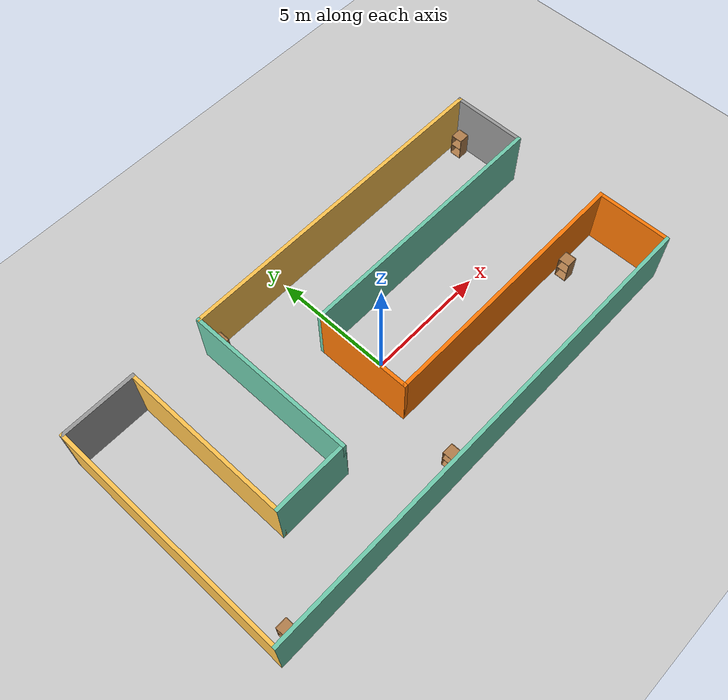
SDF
<sdf version="1.6">
 <world name="default">
  <light name="sun" type="directional">
   <pose>0 0 10 0 -0 0</pose>
   <diffuse>0.8 0.8 0.8 1</diffuse>
   <specular>0.2 0.2 0.2 1</specular>
   <attenuation>
    <range>1000</range>
    <constant>0.9</constant>
    <linear>0.01</linear>
    <quadratic>0.001</quadratic>
   </attenuation>
   <direction>-0.5 0.1 -0.9</direction>
  </light>
  <model name="ground_plane">
   <static>1</static>
   <link name="link">
    <collision name="collision">
     <geometry><plane><normal>0 0 1</normal><size>100 100</size></plane></geometry>
     <surface>
      <contact><collide_bitmask>65535</collide_bitmask></contact>
      <friction><ode><mu>100</mu><mu2>50</mu2></ode></friction>
     </surface>
    </collision>
    <visual name="visual">
     <cast_shadows>0</cast_shadows>
     <geometry><plane><normal>0 0 1</normal><size>100 100</size></plane></geometry>
     <material>
      <script><uri>file://media/materials/scripts/gazebo.material</uri><name>Gazebo/Grey</name></script>
     </material>
    </visual>
   </link>
  </model>
  <gravity>0 0 -9.8</gravity>
  <magnetic_field>6e-06 2.3e-05 -4.2e-05</magnetic_field>
  <atmosphere type="adiabatic"/>
  <physics name="default_physics" default="0" type="ode">
   <max_step_size>0.001</max_step_size>
   <real_time_factor>1</real_time_factor>
   <real_time_update_rate>1000</real_time_update_rate>
  </physics>
  <scene><ambient>0.4 0.4 0.4 1</ambient><background>0.7 0.7 0.7 1</background><shadows>1</shadows></scene>
  <spherical_coordinates>
   <surface_model>EARTH_WGS84</surface_model>
   <latitude_deg>0</latitude_deg>
   <longitude_deg>0</longitude_deg>
   <elevation>0</elevation>
   <heading_deg>0</heading_deg>
  </spherical_coordinates>
  <model name="simplebuilding">
   <link name="Wall_0">
    <collision name="Wall_0_Collision">
     <geometry><box><size>10.15 0.15 2.5</size></box></geometry>
     <pose>0 0 1.25 0 -0 0</pose>
    </collision>
    <visual name="Wall_0_Visual">
     <pose>0 0 1.25 0 -0 0</pose>
     <geometry><box><size>10.15 0.15 2.5</size></box></geometry>
     <material>
      <script><uri>file://media/materials/scripts/gazebo.material</uri><name>Gazebo/Grey</name></script>
      <ambient>1 0.764706 0.305882 1</ambient>
     </material>
     <meta><layer>0</layer></meta>
    </visual>
    <pose>-10 0 0 0 0 -1.5708</pose>
   </link>
   <link name="Wall_10">
    <collision name="Wall_10_Collision">
     <geometry><box><size>7.15 0.15 2.5</size></box></geometry>
     <pose>0 0 1.25 0 -0 0</pose>
    </collision>
    <visual name="Wall_10_Visual">
     <pose>0 0 1.25 0 -0 0</pose>
     <geometry><box><size>7.15 0.15 2.5</size></box></geometry>
     <material>
      <script><uri>file://media/materials/scripts/gazebo.material</uri><name>Gazebo/Grey</name></script>
      <ambient>0.435294 0.796078 0.67451 1</ambient>
     </material>
     <meta><layer>0</layer></meta>
    </visual>
    <pose>-4 1.5 0 0 -0 1.5708</pose>
   </link>
   <link name="Wall_12">
    <collision name="Wall_12_Collision">
     <geometry><box><size>14.15 0.15 2.5</size></box></geometry>
     <pose>0 0 1.25 0 -0 0</pose>
    </collision>
    <visual name="Wall_12_Visual">
     <pose>0 0 1.25 0 -0 0</pose>
     <geometry><box><size>14.15 0.15 2.5</size></box></geometry>
     <material>
      <script><uri>file://media/materials/scripts/gazebo.material</uri><name>Gazebo/Grey</name></script>
      <ambient>1 0.764706 0.305882 1</ambient>
     </material>
     <meta><layer>0</layer></meta>
    </visual>
    <pose>3 5 0 0 -0 0</pose>
   </link>
   <link name="Wall_13">
    <collision name="Wall_13_Collision">
     <geometry><box><size>3.15 0.15 2.5</size></box></geometry>
     <pose>0 0 1.25 0 -0 0</pose>
    </collision>
    <visual name="Wall_13_Visual">
     <pose>0 0 1.25 0 -0 0</pose>
     <geometry><box><size>3.15 0.15 2.5</size></box></geometry>
     <material>
      <script><uri>file://media/materials/scripts/gazebo.material</uri><name>Gazebo/Grey</name></script>
      <ambient>1 1 1 1</ambient>
     </material>
     <meta><layer>0</layer></meta>
    </visual>
    <pose>10 3.5 0 0 0 -1.5708</pose>
   </link>
   <link name="Wall_15">
    <collision name="Wall_15_Collision">
     <geometry><box><size>11.15 0.15 2.5</size></box></geometry>
     <pose>0 0 1.25 0 -0 0</pose>
    </collision>
    <visual name="Wall_15_Visual">
     <pose>0 0 1.25 0 -0 0</pose>
     <geometry><box><size>11.15 0.15 2.5</size></box></geometry>
     <material>
      <script><uri>file://media/materials/scripts/gazebo.material</uri><name>Gazebo/Grey</name></script>
      <ambient>0.435294 0.796078 0.67451 1</ambient>
     </material>
     <meta><layer>0</layer></meta>
    </visual>
    <pose>4.5 2 0 0 -0 3.14159</pose>
   </link>
   <link name="Wall_17">
    <collision name="Wall_17_Collision">
     <geometry><box><size>4.15 0.15 2.5</size></box></geometry>
     <pose>0 0 1.25 0 -0 0</pose>
    </collision>
    <visual name="Wall_17_Visual">
     <pose>0 0 1.25 0 -0 0</pose>
     <geometry><box><size>4.15 0.15 2.5</size></box></geometry>
     <material>
      <script><uri>file://media/materials/scripts/gazebo.material</uri><name>Gazebo/Grey</name></script>
      <ambient>0.996078 0.47451 0.0196078 1</ambient>
     </material>
     <meta><layer>0</layer></meta>
    </visual>
    <pose>-1 0 0 0 0 -1.5708</pose>
   </link>
   <link name="Wall_19">
    <collision name="Wall_19_Collision">
     <geometry><box><size>11.15 0.15 2.5</size></box></geometry>
     <pose>0 0 1.25 0 -0 0</pose>
    </collision>
    <visual name="Wall_19_Visual">
     <pose>0 0 1.25 0 -0 0</pose>
     <geometry><box><size>11.15 0.15 2.5</size></box></geometry>
     <material>
      <script><uri>file://media/materials/scripts/gazebo.material</uri><name>Gazebo/Grey</name></script>
      <ambient>0.996078 0.47451 0.0196078 1</ambient>
     </material>
     <meta><layer>0</layer></meta>
    </visual>
    <pose>4.5 -2 0 0 -0 0</pose>
   </link>
   <link name="Wall_2">
    <collision name="Wall_2_Collision">
     <geometry><box><size>20.15 0.15 2.5</size></box></geometry>
     <pose>0 0 1.25 0 -0 0</pose>
    </collision>
    <visual name="Wall_2_Visual">
     <pose>0 0 1.25 0 -0 0</pose>
     <geometry><box><size>20.15 0.15 2.5</size></box></geometry>
     <material>
      <script><uri>file://media/materials/scripts/gazebo.material</uri><name>Gazebo/Grey</name></script>
      <ambient>0.435294 0.796078 0.67451 1</ambient>
     </material>
     <meta><layer>0</layer></meta>
    </visual>
    <pose>0 -5 0 0 -0 0</pose>
   </link>
   <link name="Wall_21">
    <collision name="Wall_21_Collision">
     <geometry><box><size>3.15 0.15 2.5</size></box></geometry>
     <pose>0 0 1.25 0 -0 0</pose>
    </collision>
    <visual name="Wall_21_Visual">
     <pose>0 0 1.25 0 -0 0</pose>
     <geometry><box><size>3.15 0.15 2.5</size></box></geometry>
     <material>
      <script><uri>file://media/materials/scripts/gazebo.material</uri><name>Gazebo/Grey</name></script>
      <ambient>0.996078 0.47451 0.0196078 1</ambient>
     </material>
     <meta><layer>0</layer></meta>
    </visual>
    <pose>10 -3.5 0 0 0 -1.5708</pose>
   </link>
   <link name="Wall_4">
    <collision name="Wall_4_Collision">
     <geometry><box><size>3.15 0.15 2.5</size></box></geometry>
     <pose>0 0 1.25 0 -0 0</pose>
    </collision>
    <visual name="Wall_4_Visual">
     <pose>0 0 1.25 0 -0 0</pose>
     <geometry><box><size>3.15 0.15 2.5</size></box></geometry>
     <material>
      <script><uri>file://media/materials/scripts/gazebo.material</uri><name>Gazebo/Grey</name></script>
      <ambient>1 1 1 1</ambient>
     </material>
     <meta><layer>0</layer></meta>
    </visual>
    <pose>-8.5 5 0 0 -0 0</pose>
   </link>
   <link name="Wall_6">
    <collision name="Wall_6_Collision">
     <geometry><box><size>7.15 0.15 2.5</size></box></geometry>
     <pose>0 0 1.25 0 -0 0</pose>
    </collision>
    <visual name="Wall_6_Visual">
     <pose>0 0 1.25 0 -0 0</pose>
     <geometry><box><size>7.15 0.15 2.5</size></box></geometry>
     <material>
      <script><uri>file://media/materials/scripts/gazebo.material</uri><name>Gazebo/Grey</name></script>
      <ambient>1 0.764706 0.305882 1</ambient>
     </material>
     <meta><layer>0</layer></meta>
    </visual>
    <pose>-7 1.5 0 0 0 -1.5708</pose>
   </link>
   <link name="Wall_8">
    <collision name="Wall_8_Collision">
     <geometry><box><size>3.15 0.15 2.5</size></box></geometry>
     <pose>0 0 1.25 0 -0 0</pose>
    </collision>
    <visual name="Wall_8_Visual">
     <pose>0 0 1.25 0 -0 0</pose>
     <geometry><box><size>3.15 0.15 2.5</size></box></geometry>
     <material>
      <script><uri>file://media/materials/scripts/gazebo.material</uri><name>Gazebo/Grey</name></script>
      <ambient>0.435294 0.796078 0.67451 1</ambient>
     </material>
     <meta><layer>0</layer></meta>
    </visual>
    <pose>-5.5 -2 0 0 -0 0</pose>
   </link>
   <static>1</static>
  </model>
  <model name="cabinet">
   <static>1</static>
   <link name="cabinet_bottom_plate">
    <inertial>
     <pose>0 0 -1 0 -0 0</pose>
     <inertia><ixx>2.05</ixx><ixy>0</ixy><ixz>0</ixz><iyy>2.05</iyy><iyz>0</iyz><izz>2.05</izz></inertia>
     <mass>25</mass>
    </inertial>
    <collision name="cabinet_bottom_plate_geom">
     <pose>0 0 0.01 0 -0 0</pose>
     <geometry><box><size>0.45 0.45 0.02</size></box></geometry>
    </collision>
    <visual name="cabinet_bottom_plate_geom_visual">
     <pose>0 0 0.01 0 -0 0</pose>
     <geometry><box><size>0.45 0.45 0.02</size></box></geometry>
     <material>
      <script><uri>file://media/materials/scripts/gazebo.material</uri><name>Gazebo/Wood</name></script>
     </material>
    </visual>
    <collision name="cabinet_bottom_plate_geom_cabinet_back_plate">
     <pose>0.235 0 0.51 0 -0 0</pose>
     <geometry><box><size>0.02 0.45 1.02</size></box></geometry>
    </collision>
    <visual name="cabinet_bottom_plate_geom_cabinet_back_plate_visual">
     <pose>0.235 0 0.51 0 -0 0</pose>
     <geometry><box><size>0.02 0.45 1.02</size></box></geometry>
     <material>
      <script><uri>file://media/materials/scripts/gazebo.material</uri><name>Gazebo/Wood</name></script>
     </material>
    </visual>
    <collision name="cabinet_bottom_plate_geom_cabinet_left_plate">
     <pose>0 0.235 0.51 0 -0 0</pose>
     <geometry><box><size>0.45 0.02 1.02</size></box></geometry>
    </collision>
    <visual name="cabinet_bottom_plate_geom_cabinet_left_plate_visual">
     <pose>0 0.235 0.51 0 -0 0</pose>
     <geometry><box><size>0.45 0.02 1.02</size></box></geometry>
     <material>
      <script><uri>file://media/materials/scripts/gazebo.material</uri><name>Gazebo/Wood</name></script>
     </material>
    </visual>
    <collision name="cabinet_bottom_plate_geom_cabinet_middle_plate">
     <pose>0 0 0.51 0 -0 0</pose>
     <geometry><box><size>0.45 0.45 0.02</size></box></geometry>
    </collision>
    <visual name="cabinet_bottom_plate_geom_cabinet_middle_plate_visual">
     <pose>0 0 0.51 0 -0 0</pose>
     <geometry><box><size>0.45 0.45 0.02</size></box></geometry>
     <material>
      <script><uri>file://media/materials/scripts/gazebo.material</uri><name>Gazebo/Wood</name></script>
     </material>
    </visual>
    <collision name="cabinet_bottom_plate_geom_cabinet_right_plate">
     <pose>0 -0.235 0.51 0 -0 0</pose>
     <geometry><box><size>0.45 0.02 1.02</size></box></geometry>
    </collision>
    <visual name="cabinet_bottom_plate_geom_cabinet_right_plate_visual">
     <pose>0 -0.235 0.51 0 -0 0</pose>
     <geometry><box><size>0.45 0.02 1.02</size></box></geometry>
     <material>
      <script><uri>file://media/materials/scripts/gazebo.material</uri><name>Gazebo/Wood</name></script>
     </material>
    </visual>
    <collision name="cabinet_bottom_plate_geom_cabinet_top_plate">
     <pose>0 0 1.01 0 -0 0</pose>
     <geometry><box><size>0.45 0.45 0.02</size></box></geometry>
    </collision>
    <visual name="cabinet_bottom_plate_geom_cabinet_top_plate_visual">
     <pose>0 0 1.01 0 -0 0</pose>
     <geometry><box><size>0.45 0.45 0.02</size></box></geometry>
     <material>
      <script><uri>file://media/materials/scripts/gazebo.material</uri><name>Gazebo/Wood</name></script>
     </material>
    </visual>
   </link>
   <pose>-9.22504 -4.50417 0 0 -0 0</pose>
  </model>
  <model name="cabinet_0">
   <static>1</static>
   <link name="cabinet_bottom_plate">
    <inertial>
     <pose>0 0 -1 0 -0 0</pose>
     <inertia><ixx>2.05</ixx><ixy>0</ixy><ixz>0</ixz><iyy>2.05</iyy><iyz>0</iyz><izz>2.05</izz></inertia>
     <mass>25</mass>
    </inertial>
    <collision name="cabinet_bottom_plate_geom">
     <pose>0 0 0.01 0 -0 0</pose>
     <geometry><box><size>0.45 0.45 0.02</size></box></geometry>
    </collision>
    <visual name="cabinet_bottom_plate_geom_visual">
     <pose>0 0 0.01 0 -0 0</pose>
     <geometry><box><size>0.45 0.45 0.02</size></box></geometry>
     <material>
      <script><uri>file://media/materials/scripts/gazebo.material</uri><name>Gazebo/Wood</name></script>
     </material>
    </visual>
    <collision name="cabinet_bottom_plate_geom_cabinet_back_plate">
     <pose>0.235 0 0.51 0 -0 0</pose>
     <geometry><box><size>0.02 0.45 1.02</size></box></geometry>
    </collision>
    <visual name="cabinet_bottom_plate_geom_cabinet_back_plate_visual">
     <pose>0.235 0 0.51 0 -0 0</pose>
     <geometry><box><size>0.02 0.45 1.02</size></box></geometry>
     <material>
      <script><uri>file://media/materials/scripts/gazebo.material</uri><name>Gazebo/Wood</name></script>
     </material>
    </visual>
    <collision name="cabinet_bottom_plate_geom_cabinet_left_plate">
     <pose>0 0.235 0.51 0 -0 0</pose>
     <geometry><box><size>0.45 0.02 1.02</size></box></geometry>
    </collision>
    <visual name="cabinet_bottom_plate_geom_cabinet_left_plate_visual">
     <pose>0 0.235 0.51 0 -0 0</pose>
     <geometry><box><size>0.45 0.02 1.02</size></box></geometry>
     <material>
      <script><uri>file://media/materials/scripts/gazebo.material</uri><name>Gazebo/Wood</name></script>
     </material>
    </visual>
    <collision name="cabinet_bottom_plate_geom_cabinet_middle_plate">
     <pose>0 0 0.51 0 -0 0</pose>
     <geometry><box><size>0.45 0.45 0.02</size></box></geometry>
    </collision>
    <visual name="cabinet_bottom_plate_geom_cabinet_middle_plate_visual">
     <pose>0 0 0.51 0 -0 0</pose>
     <geometry><box><size>0.45 0.45 0.02</size></box></geometry>
     <material>
      <script><uri>file://media/materials/scripts/gazebo.material</uri><name>Gazebo/Wood</name></script>
     </material>
    </visual>
    <collision name="cabinet_bottom_plate_geom_cabinet_right_plate">
     <pose>0 -0.235 0.51 0 -0 0</pose>
     <geometry><box><size>0.45 0.02 1.02</size></box></geometry>
    </collision>
    <visual name="cabinet_bottom_plate_geom_cabinet_right_plate_visual">
     <pose>0 -0.235 0.51 0 -0 0</pose>
     <geometry><box><size>0.45 0.02 1.02</size></box></geometry>
     <material>
      <script><uri>file://media/materials/scripts/gazebo.material</uri><name>Gazebo/Wood</name></script>
     </material>
    </visual>
    <collision name="cabinet_bottom_plate_geom_cabinet_top_plate">
     <pose>0 0 1.01 0 -0 0</pose>
     <geometry><box><size>0.45 0.45 0.02</size></box></geometry>
    </collision>
    <visual name="cabinet_bottom_plate_geom_cabinet_top_plate_visual">
     <pose>0 0 1.01 0 -0 0</pose>
     <geometry><box><size>0.45 0.45 0.02</size></box></geometry>
     <material>
      <script><uri>file://media/materials/scripts/gazebo.material</uri><name>Gazebo/Wood</name></script>
     </material>
    </visual>
   </link>
   <pose>-3.62763 4.63881 0 0 -0 0</pose>
  </model>
  <model name="cabinet_1">
   <static>1</static>
   <link name="cabinet_bottom_plate">
    <inertial>
     <pose>0 0 -1 0 -0 0</pose>
     <inertia><ixx>2.05</ixx><ixy>0</ixy><ixz>0</ixz><iyy>2.05</iyy><iyz>0</iyz><izz>2.05</izz></inertia>
     <mass>25</mass>
    </inertial>
    <collision name="cabinet_bottom_plate_geom">
     <pose>0 0 0.01 0 -0 0</pose>
     <geometry><box><size>0.45 0.45 0.02</size></box></geometry>
    </collision>
    <visual name="cabinet_bottom_plate_geom_visual">
     <pose>0 0 0.01 0 -0 0</pose>
     <geometry><box><size>0.45 0.45 0.02</size></box></geometry>
     <material>
      <script><uri>file://media/materials/scripts/gazebo.material</uri><name>Gazebo/Wood</name></script>
     </material>
    </visual>
    <collision name="cabinet_bottom_plate_geom_cabinet_back_plate">
     <pose>0.235 0 0.51 0 -0 0</pose>
     <geometry><box><size>0.02 0.45 1.02</size></box></geometry>
    </collision>
    <visual name="cabinet_bottom_plate_geom_cabinet_back_plate_visual">
     <pose>0.235 0 0.51 0 -0 0</pose>
     <geometry><box><size>0.02 0.45 1.02</size></box></geometry>
     <material>
      <script><uri>file://media/materials/scripts/gazebo.material</uri><name>Gazebo/Wood</name></script>
     </material>
    </visual>
    <collision name="cabinet_bottom_plate_geom_cabinet_left_plate">
     <pose>0 0.235 0.51 0 -0 0</pose>
     <geometry><box><size>0.45 0.02 1.02</size></box></geometry>
    </collision>
    <visual name="cabinet_bottom_plate_geom_cabinet_left_plate_visual">
     <pose>0 0.235 0.51 0 -0 0</pose>
     <geometry><box><size>0.45 0.02 1.02</size></box></geometry>
     <material>
      <script><uri>file://media/materials/scripts/gazebo.material</uri><name>Gazebo/Wood</name></script>
     </material>
    </visual>
    <collision name="cabinet_bottom_plate_geom_cabinet_middle_plate">
     <pose>0 0 0.51 0 -0 0</pose>
     <geometry><box><size>0.45 0.45 0.02</size></box></geometry>
    </collision>
    <visual name="cabinet_bottom_plate_geom_cabinet_middle_plate_visual">
     <pose>0 0 0.51 0 -0 0</pose>
     <geometry><box><size>0.45 0.45 0.02</size></box></geometry>
     <material>
      <script><uri>file://media/materials/scripts/gazebo.material</uri><name>Gazebo/Wood</name></script>
     </material>
    </visual>
    <collision name="cabinet_bottom_plate_geom_cabinet_right_plate">
     <pose>0 -0.235 0.51 0 -0 0</pose>
     <geometry><box><size>0.45 0.02 1.02</size></box></geometry>
    </collision>
    <visual name="cabinet_bottom_plate_geom_cabinet_right_plate_visual">
     <pose>0 -0.235 0.51 0 -0 0</pose>
     <geometry><box><size>0.45 0.02 1.02</size></box></geometry>
     <material>
      <script><uri>file://media/materials/scripts/gazebo.material</uri><name>Gazebo/Wood</name></script>
     </material>
    </visual>
    <collision name="cabinet_bottom_plate_geom_cabinet_top_plate">
     <pose>0 0 1.01 0 -0 0</pose>
     <geometry><box><size>0.45 0.45 0.02</size></box></geometry>
    </collision>
    <visual name="cabinet_bottom_plate_geom_cabinet_top_plate_visual">
     <pose>0 0 1.01 0 -0 0</pose>
     <geometry><box><size>0.45 0.45 0.02</size></box></geometry>
     <material>
      <script><uri>file://media/materials/scripts/gazebo.material</uri><name>Gazebo/Wood</name></script>
     </material>
    </visual>
   </link>
   <pose>-1.22916 -4.44021 0 0 -0 0</pose>
  </model>
  <model name="cabinet_2">
   <static>1</static>
   <link name="cabinet_bottom_plate">
    <inertial>
     <pose>0 0 -1 0 -0 0</pose>
     <inertia><ixx>2.05</ixx><ixy>0</ixy><ixz>0</ixz><iyy>2.05</iyy><iyz>0</iyz><izz>2.05</izz></inertia>
     <mass>25</mass>
    </inertial>
    <collision name="cabinet_bottom_plate_geom">
     <pose>0 0 0.01 0 -0 0</pose>
     <geometry><box><size>0.45 0.45 0.02</size></box></geometry>
    </collision>
    <visual name="cabinet_bottom_plate_geom_visual">
     <pose>0 0 0.01 0 -0 0</pose>
     <geometry><box><size>0.45 0.45 0.02</size></box></geometry>
     <material>
      <script><uri>file://media/materials/scripts/gazebo.material</uri><name>Gazebo/Wood</name></script>
     </material>
    </visual>
    <collision name="cabinet_bottom_plate_geom_cabinet_back_plate">
     <pose>0.235 0 0.51 0 -0 0</pose>
     <geometry><box><size>0.02 0.45 1.02</size></box></geometry>
    </collision>
    <visual name="cabinet_bottom_plate_geom_cabinet_back_plate_visual">
     <pose>0.235 0 0.51 0 -0 0</pose>
     <geometry><box><size>0.02 0.45 1.02</size></box></geometry>
     <material>
      <script><uri>file://media/materials/scripts/gazebo.material</uri><name>Gazebo/Wood</name></script>
     </material>
    </visual>
    <collision name="cabinet_bottom_plate_geom_cabinet_left_plate">
     <pose>0 0.235 0.51 0 -0 0</pose>
     <geometry><box><size>0.45 0.02 1.02</size></box></geometry>
    </collision>
    <visual name="cabinet_bottom_plate_geom_cabinet_left_plate_visual">
     <pose>0 0.235 0.51 0 -0 0</pose>
     <geometry><box><size>0.45 0.02 1.02</size></box></geometry>
     <material>
      <script><uri>file://media/materials/scripts/gazebo.material</uri><name>Gazebo/Wood</name></script>
     </material>
    </visual>
    <collision name="cabinet_bottom_plate_geom_cabinet_middle_plate">
     <pose>0 0 0.51 0 -0 0</pose>
     <geometry><box><size>0.45 0.45 0.02</size></box></geometry>
    </collision>
    <visual name="cabinet_bottom_plate_geom_cabinet_middle_plate_visual">
     <pose>0 0 0.51 0 -0 0</pose>
     <geometry><box><size>0.45 0.45 0.02</size></box></geometry>
     <material>
      <script><uri>file://media/materials/scripts/gazebo.material</uri><name>Gazebo/Wood</name></script>
     </material>
    </visual>
    <collision name="cabinet_bottom_plate_geom_cabinet_right_plate">
     <pose>0 -0.235 0.51 0 -0 0</pose>
     <geometry><box><size>0.45 0.02 1.02</size></box></geometry>
    </collision>
    <visual name="cabinet_bottom_plate_geom_cabinet_right_plate_visual">
     <pose>0 -0.235 0.51 0 -0 0</pose>
     <geometry><box><size>0.45 0.02 1.02</size></box></geometry>
     <material>
      <script><uri>file://media/materials/scripts/gazebo.material</uri><name>Gazebo/Wood</name></script>
     </material>
    </visual>
    <collision name="cabinet_bottom_plate_geom_cabinet_top_plate">
     <pose>0 0 1.01 0 -0 0</pose>
     <geometry><box><size>0.45 0.45 0.02</size></box></geometry>
    </collision>
    <visual name="cabinet_bottom_plate_geom_cabinet_top_plate_visual">
     <pose>0 0 1.01 0 -0 0</pose>
     <geometry><box><size>0.45 0.45 0.02</size></box></geometry>
     <material>
      <script><uri>file://media/materials/scripts/gazebo.material</uri><name>Gazebo/Wood</name></script>
     </material>
    </visual>
   </link>
   <pose>9.61251 4.52482 0 0 -0 0</pose>
  </model>
  <model name="cabinet_3">
   <static>1</static>
   <link name="cabinet_bottom_plate">
    <inertial>
     <pose>0 0 -1 0 -0 0</pose>
     <inertia><ixx>2.05</ixx><ixy>0</ixy><ixz>0</ixz><iyy>2.05</iyy><iyz>0</iyz><izz>2.05</izz></inertia>
     <mass>25</mass>
    </inertial>
    <collision name="cabinet_bottom_plate_geom">
     <pose>0 0 0.01 0 -0 0</pose>
     <geometry><box><size>0.45 0.45 0.02</size></box></geometry>
    </collision>
    <visual name="cabinet_bottom_plate_geom_visual">
     <pose>0 0 0.01 0 -0 0</pose>
     <geometry><box><size>0.45 0.45 0.02</size></box></geometry>
     <material>
      <script><uri>file://media/materials/scripts/gazebo.material</uri><name>Gazebo/Wood</name></script>
     </material>
    </visual>
    <collision name="cabinet_bottom_plate_geom_cabinet_back_plate">
     <pose>0.235 0 0.51 0 -0 0</pose>
     <geometry><box><size>0.02 0.45 1.02</size></box></geometry>
    </collision>
    <visual name="cabinet_bottom_plate_geom_cabinet_back_plate_visual">
     <pose>0.235 0 0.51 0 -0 0</pose>
     <geometry><box><size>0.02 0.45 1.02</size></box></geometry>
     <material>
      <script><uri>file://media/materials/scripts/gazebo.material</uri><name>Gazebo/Wood</name></script>
     </material>
    </visual>
    <collision name="cabinet_bottom_plate_geom_cabinet_left_plate">
     <pose>0 0.235 0.51 0 -0 0</pose>
     <geometry><box><size>0.45 0.02 1.02</size></box></geometry>
    </collision>
    <visual name="cabinet_bottom_plate_geom_cabinet_left_plate_visual">
     <pose>0 0.235 0.51 0 -0 0</pose>
     <geometry><box><size>0.45 0.02 1.02</size></box></geometry>
     <material>
      <script><uri>file://media/materials/scripts/gazebo.material</uri><name>Gazebo/Wood</name></script>
     </material>
    </visual>
    <collision name="cabinet_bottom_plate_geom_cabinet_middle_plate">
     <pose>0 0 0.51 0 -0 0</pose>
     <geometry><box><size>0.45 0.45 0.02</size></box></geometry>
    </collision>
    <visual name="cabinet_bottom_plate_geom_cabinet_middle_plate_visual">
     <pose>0 0 0.51 0 -0 0</pose>
     <geometry><box><size>0.45 0.45 0.02</size></box></geometry>
     <material>
      <script><uri>file://media/materials/scripts/gazebo.material</uri><name>Gazebo/Wood</name></script>
     </material>
    </visual>
    <collision name="cabinet_bottom_plate_geom_cabinet_right_plate">
     <pose>0 -0.235 0.51 0 -0 0</pose>
     <geometry><box><size>0.45 0.02 1.02</size></box></geometry>
    </collision>
    <visual name="cabinet_bottom_plate_geom_cabinet_right_plate_visual">
     <pose>0 -0.235 0.51 0 -0 0</pose>
     <geometry><box><size>0.45 0.02 1.02</size></box></geometry>
     <material>
      <script><uri>file://media/materials/scripts/gazebo.material</uri><name>Gazebo/Wood</name></script>
     </material>
    </visual>
    <collision name="cabinet_bottom_plate_geom_cabinet_top_plate">
     <pose>0 0 1.01 0 -0 0</pose>
     <geometry><box><size>0.45 0.45 0.02</size></box></geometry>
    </collision>
    <visual name="cabinet_bottom_plate_geom_cabinet_top_plate_visual">
     <pose>0 0 1.01 0 -0 0</pose>
     <geometry><box><size>0.45 0.45 0.02</size></box></geometry>
     <material>
      <script><uri>file://media/materials/scripts/gazebo.material</uri><name>Gazebo/Wood</name></script>
     </material>
    </visual>
   </link>
   <pose>1.94004 2.47429 0 0 -0 0</pose>
  </model>
  <model name="cabinet_4">
   <static>1</static>
   <link name="cabinet_bottom_plate">
    <inertial>
     <pose>0 0 -1 0 -0 0</pose>
     <inertia><ixx>2.05</ixx><ixy>0</ixy><ixz>0</ixz><iyy>2.05</iyy><iyz>0</iyz><izz>2.05</izz></inertia>
     <mass>25</mass>
    </inertial>
    <collision name="cabinet_bottom_plate_geom">
     <pose>0 0 0.01 0 -0 0</pose>
     <geometry><box><size>0.45 0.45 0.02</size></box></geometry>
    </collision>
    <visual name="cabinet_bottom_plate_geom_visual">
     <pose>0 0 0.01 0 -0 0</pose>
     <geometry><box><size>0.45 0.45 0.02</size></box></geometry>
     <material>
      <script><uri>file://media/materials/scripts/gazebo.material</uri><name>Gazebo/Wood</name></script>
     </material>
    </visual>
    <collision name="cabinet_bottom_plate_geom_cabinet_back_plate">
     <pose>0.235 0 0.51 0 -0 0</pose>
     <geometry><box><size>0.02 0.45 1.02</size></box></geometry>
    </collision>
    <visual name="cabinet_bottom_plate_geom_cabinet_back_plate_visual">
     <pose>0.235 0 0.51 0 -0 0</pose>
     <geometry><box><size>0.02 0.45 1.02</size></box></geometry>
     <material>
      <script><uri>file://media/materials/scripts/gazebo.material</uri><name>Gazebo/Wood</name></script>
     </material>
    </visual>
    <collision name="cabinet_bottom_plate_geom_cabinet_left_plate">
     <pose>0 0.235 0.51 0 -0 0</pose>
     <geometry><box><size>0.45 0.02 1.02</size></box></geometry>
    </collision>
    <visual name="cabinet_bottom_plate_geom_cabinet_left_plate_visual">
     <pose>0 0.235 0.51 0 -0 0</pose>
     <geometry><box><size>0.45 0.02 1.02</size></box></geometry>
     <material>
      <script><uri>file://media/materials/scripts/gazebo.material</uri><name>Gazebo/Wood</name></script>
     </material>
    </visual>
    <collision name="cabinet_bottom_plate_geom_cabinet_middle_plate">
     <pose>0 0 0.51 0 -0 0</pose>
     <geometry><box><size>0.45 0.45 0.02</size></box></geometry>
    </collision>
    <visual name="cabinet_bottom_plate_geom_cabinet_middle_plate_visual">
     <pose>0 0 0.51 0 -0 0</pose>
     <geometry><box><size>0.45 0.45 0.02</size></box></geometry>
     <material>
      <script><uri>file://media/materials/scripts/gazebo.material</uri><name>Gazebo/Wood</name></script>
     </material>
    </visual>
    <collision name="cabinet_bottom_plate_geom_cabinet_right_plate">
     <pose>0 -0.235 0.51 0 -0 0</pose>
     <geometry><box><size>0.45 0.02 1.02</size></box></geometry>
    </collision>
    <visual name="cabinet_bottom_plate_geom_cabinet_right_plate_visual">
     <pose>0 -0.235 0.51 0 -0 0</pose>
     <geometry><box><size>0.45 0.02 1.02</size></box></geometry>
     <material>
      <script><uri>file://media/materials/scripts/gazebo.material</uri><name>Gazebo/Wood</name></script>
     </material>
    </visual>
    <collision name="cabinet_bottom_plate_geom_cabinet_top_plate">
     <pose>0 0 1.01 0 -0 0</pose>
     <geometry><box><size>0.45 0.45 0.02</size></box></geometry>
    </collision>
    <visual name="cabinet_bottom_plate_geom_cabinet_top_plate_visual">
     <pose>0 0 1.01 0 -0 0</pose>
     <geometry><box><size>0.45 0.45 0.02</size></box></geometry>
     <material>
      <script><uri>file://media/materials/scripts/gazebo.material</uri><name>Gazebo/Wood</name></script>
     </material>
    </visual>
   </link>
   <pose>7.75208 -2.44223 0 0 -0 0</pose>
  </model>
 </world>
</sdf>
